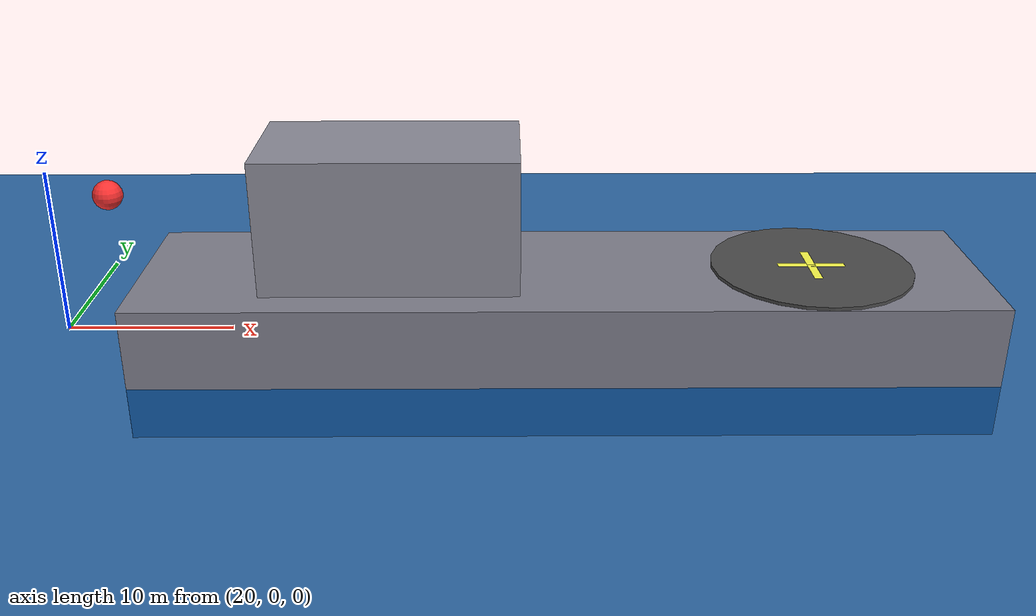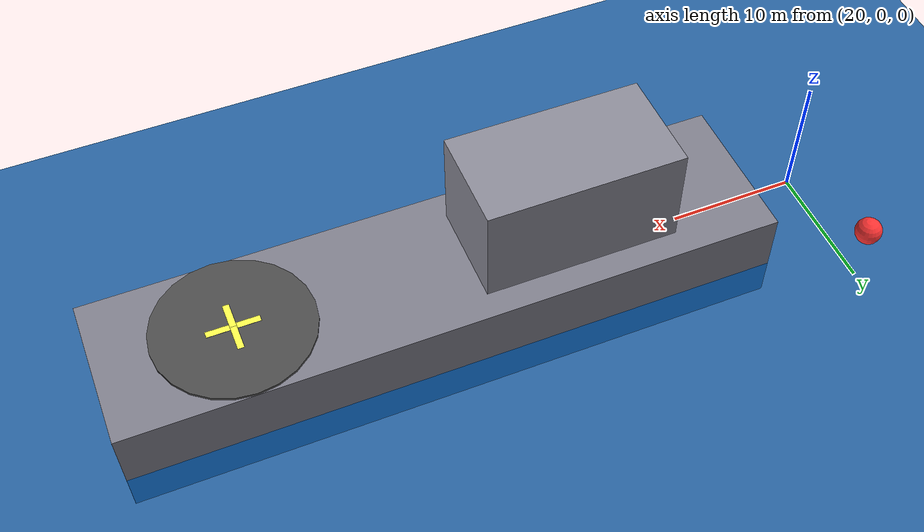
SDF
<sdf version="1.9">
 <world name="ship_landing_ardupilot">
  <physics name="1ms" type="ignore">
   <max_step_size>0.001</max_step_size>
   <real_time_factor>1.0</real_time_factor>
  </physics>
  <plugin filename="gz-sim-physics-system" name="gz::sim::systems::Physics"/>
  <plugin filename="gz-sim-sensors-system" name="gz::sim::systems::Sensors"/>
  <plugin filename="gz-sim-user-commands-system" name="gz::sim::systems::UserCommands"/>
  <plugin filename="gz-sim-scene-broadcaster-system" name="gz::sim::systems::SceneBroadcaster"/>
  <plugin filename="gz-sim-imu-system" name="gz::sim::systems::Imu"/>
  <plugin filename="gz-sim-navsat-system" name="gz::sim::systems::NavSat"/>
  <spherical_coordinates>
   <latitude_deg>-35.363262</latitude_deg>
   <longitude_deg>149.165237</longitude_deg>
   <elevation>584</elevation>
   <heading_deg>0</heading_deg>
   <surface_model>EARTH_WGS84</surface_model>
  </spherical_coordinates>
  <scene><ambient>0.6 0.6 0.7 1</ambient><background>0.4 0.5 0.6 1</background><shadows>true</shadows></scene>
  <light type="directional" name="sun">
   <pose>0 0 100 0 0 0</pose>
   <diffuse>0.8 0.8 0.8 1</diffuse>
   <specular>0.3 0.3 0.3 1</specular>
   <direction>-0.5 0.3 -1</direction>
  </light>
  <model name="water_plane">
   <static>true</static>
   <pose>0 0 -1 0 0 0</pose>
   <link name="link">
    <visual name="water_visual">
     <geometry><box><size>500 500 0.1</size></box></geometry>
     <material>
      <ambient>0.0 0.2 0.4 0.8</ambient>
      <diffuse>0.0 0.3 0.6 0.8</diffuse>
      <specular>0.3 0.3 0.3 1</specular>
     </material>
    </visual>
   </link>
  </model>
  <model name="ship">
   <static>true</static>
   <pose>50 0 1.9 0 0 0</pose>
   <link name="base_link">
    <inertial><mass>500000</mass><inertia><ixx>1e9</ixx><iyy>5e9</iyy><izz>5e9</izz></inertia></inertial>
    <collision name="hull_collision">
     <pose>0 0 -2 0 0 0</pose>
     <geometry><box><size>50 12 8</size></box></geometry>
    </collision>
    <collision name="deck_collision">
     <pose>15 0 2 0 0 0</pose>
     <geometry><box><size>20 12 0.2</size></box></geometry>
     <surface>
      <friction><ode><mu>1.0</mu><mu2>1.0</mu2></ode></friction>
      <contact><ode><kp>1e6</kp><kd>100</kd></ode></contact>
     </surface>
    </collision>
    <visual name="hull_visual">
     <pose>0 0 -2 0 0 0</pose>
     <geometry><box><size>50 12 8</size></box></geometry>
     <material>
      <ambient>0.3 0.3 0.35 1</ambient>
      <diffuse>0.5 0.5 0.55 1</diffuse>
      <specular>0.1 0.1 0.1 1</specular>
     </material>
    </visual>
    <visual name="superstructure">
     <pose>-10 0 6 0 0 0</pose>
     <geometry><box><size>15 8 8</size></box></geometry>
     <material><ambient>0.35 0.35 0.4 1</ambient><diffuse>0.55 0.55 0.6 1</diffuse></material>
    </visual>
    <visual name="helipad">
     <pose>15 0 2.1 0 0 0</pose>
     <geometry><cylinder><radius>6</radius><length>0.2</length></cylinder></geometry>
     <material><ambient>0.2 0.2 0.2 1</ambient><diffuse>0.3 0.3 0.3 1</diffuse></material>
    </visual>
    <visual name="helipad_h_vert">
     <pose>15 0 2.21 0 0 0</pose>
     <geometry><box><size>4 0.5 0.01</size></box></geometry>
     <material><ambient>0.9 0.9 0.2 1</ambient><diffuse>1.0 1.0 0.3 1</diffuse></material>
    </visual>
    <visual name="helipad_h_left">
     <pose>15 1 2.21 0 0 0</pose>
     <geometry><box><size>0.5 2 0.01</size></box></geometry>
     <material><ambient>0.9 0.9 0.2 1</ambient><diffuse>1.0 1.0 0.3 1</diffuse></material>
    </visual>
    <visual name="helipad_h_right">
     <pose>15 -1 2.21 0 0 0</pose>
     <geometry><box><size>0.5 2 0.01</size></box></geometry>
     <material><ambient>0.9 0.9 0.2 1</ambient><diffuse>1.0 1.0 0.3 1</diffuse></material>
    </visual>
    <sensor name="navsat_sensor" type="navsat">
     <always_on>1</always_on>
     <update_rate>10</update_rate>
     <topic>/ship/navsat</topic>
    </sensor>
   </link>
   <plugin filename="gz-sim-odometry-publisher-system" name="gz::sim::systems::OdometryPublisher">
    <odom_publish_frequency>50</odom_publish_frequency>
    <odom_topic>/ship/odometry</odom_topic>
   </plugin>
  </model>
  <model name="test_target">
   <static>true</static>
   <pose>20 10 5 0 0 0</pose>
   <link name="link">
    <visual name="sphere">
     <geometry><sphere><radius>1.0</radius></sphere></geometry>
     <material>
      <ambient>1.0 0.0 0.0 1</ambient>
      <diffuse>1.0 0.2 0.2 1</diffuse>
      <specular>0.5 0.5 0.5 1</specular>
     </material>
    </visual>
   </link>
  </model>
  <model name="landing_camera">
   <pose degrees="true">65 0 4.1 0 90 90</pose>
   <link name="camera_link">
    <inertial>
     <mass>0.01</mass>
     <inertia><ixx>0.00001</ixx><iyy>0.00001</iyy><izz>0.00001</izz></inertia>
    </inertial>
    <sensor name="landing_camera" type="camera">
     <camera>
      <horizontal_fov>1.57</horizontal_fov>
      <image><width>640</width><height>480</height><format>R8G8B8</format></image>
      <clip><near>0.1</near><far>100</far></clip>
     </camera>
     <always_on>1</always_on>
     <update_rate>30</update_rate>
     <visualize>true</visualize>
     <topic>/landing_camera/image</topic>
    </sensor>
    <visual name="camera_visual">
     <geometry><box><size>0.02 0.02 0.02</size></box></geometry>
     <material><ambient>0.1 0.1 0.1 1</ambient><diffuse>0.2 0.2 0.2 1</diffuse></material>
    </visual>
   </link>
  </model>
  <joint name="camera_joint" type="fixed">
   <parent>iris::iris_with_standoffs::base_link</parent>
   <child>landing_camera::camera_link</child>
  </joint>
 </world>
</sdf>
